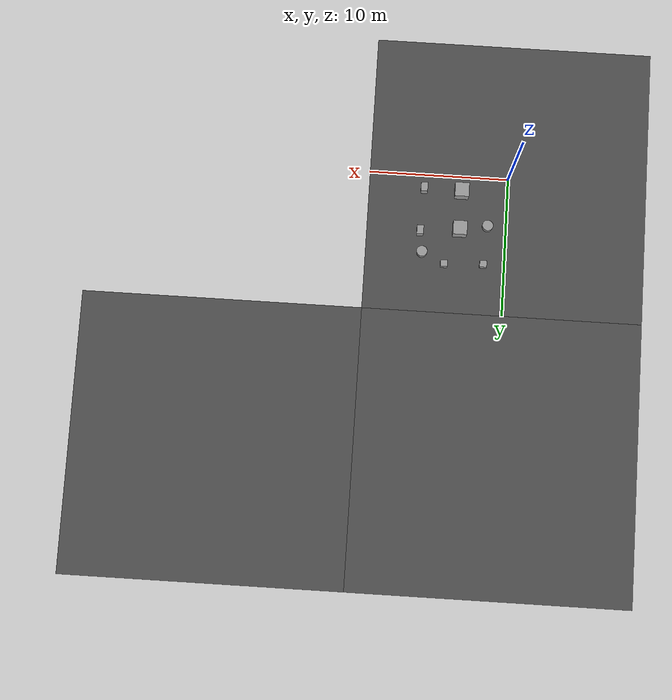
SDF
<sdf version="1.7">
 <world name="default">
  <model name="ground_plane">
   <static>1</static>
   <link name="link">
    <collision name="collision">
     <geometry><plane><normal>0 0 1</normal><size>100 100</size></plane></geometry>
     <surface>
      <contact><collide_bitmask>65535</collide_bitmask></contact>
      <friction><ode><mu>100</mu><mu2>50</mu2></ode></friction>
     </surface>
    </collision>
    <visual name="visual">
     <cast_shadows>0</cast_shadows>
     <geometry><plane><normal>0 0 1</normal><size>100 100</size></plane></geometry>
     <material>
      <script><uri>file://media/materials/scripts/gazebo.material</uri><name>Gazebo/Grey</name></script>
     </material>
    </visual>
   </link>
  </model>
  <model name="asphalt_plane">
   <static>1</static>
   <link name="link">
    <collision name="collision"><geometry><box><size>20 20 0.1</size></box></geometry></collision>
    <visual name="visual">
     <cast_shadows>0</cast_shadows>
     <geometry><box><size>20 20 0.1</size></box></geometry>
     <material>
      <script>
       <uri>model://asphalt_plane/materials/scripts</uri>
       <uri>model://asphalt_plane/materials/textures</uri>
       <name>vrc/asphalt</name>
      </script>
     </material>
    </visual>
   </link>
  </model>
  <model name="asphalt_plane_clone_5">
   <static>1</static>
   <link name="link">
    <collision name="collision"><geometry><box><size>20 20 0.1</size></box></geometry></collision>
    <visual name="visual">
     <cast_shadows>0</cast_shadows>
     <geometry><box><size>20 20 0.1</size></box></geometry>
     <material>
      <script>
       <uri>model://asphalt_plane/materials/scripts</uri>
       <uri>model://asphalt_plane/materials/textures</uri>
       <name>vrc/asphalt</name>
      </script>
     </material>
    </visual>
   </link>
   <pose>0 20 0 0 -0 0</pose>
  </model>
  <model name="asphalt_plane_clone_6">
   <static>1</static>
   <link name="link">
    <collision name="collision"><geometry><box><size>20 20 0.1</size></box></geometry></collision>
    <visual name="visual">
     <cast_shadows>0</cast_shadows>
     <geometry><box><size>20 20 0.1</size></box></geometry>
     <material>
      <script>
       <uri>model://asphalt_plane/materials/scripts</uri>
       <uri>model://asphalt_plane/materials/textures</uri>
       <name>vrc/asphalt</name>
      </script>
     </material>
    </visual>
   </link>
   <pose>20 20 0 0 -0 0</pose>
  </model>
  <model name="unit_box">
   <pose>3.3249 3.92531 0.549996 9e-06 1e-06 0</pose>
   <link name="link">
    <inertial>
     <mass>1</mass>
     <inertia>
      <ixx>0.166667</ixx>
      <ixy>0</ixy>
      <ixz>0</ixz>
      <iyy>0.166667</iyy>
      <iyz>0</iyz>
      <izz>0.166667</izz>
     </inertia>
    </inertial>
    <collision name="collision"><geometry><box><size>1 1 1</size></box></geometry></collision>
    <visual name="visual">
     <geometry><box><size>1 1 1</size></box></geometry>
     <material>
      <script><name>Gazebo/Grey</name><uri>file://media/materials/scripts/gazebo.material</uri></script>
     </material>
    </visual>
   </link>
  </model>
  <model name="unit_box_0">
   <pose>4.32444 6.49188 0.301356 0 -0 1e-06</pose>
   <link name="link">
    <inertial>
     <mass>1</mass>
     <inertia>
      <ixx>0.166667</ixx>
      <ixy>0</ixy>
      <ixz>0</ixz>
      <iyy>0.166667</iyy>
      <iyz>0</iyz>
      <izz>0.166667</izz>
     </inertia>
    </inertial>
    <collision name="collision">
     <geometry><box><size>0.495294 0.467832 0.502712</size></box></geometry>
    </collision>
    <visual name="visual">
     <geometry><box><size>0.495294 0.467832 0.502712</size></box></geometry>
     <material>
      <script><name>Gazebo/Grey</name><uri>file://media/materials/scripts/gazebo.material</uri></script>
     </material>
    </visual>
   </link>
  </model>
  <model name="unit_box_0_clone_1_clone_0">
   <pose>1.52127 6.36788 0.301356 0 -0 1e-06</pose>
   <link name="link">
    <inertial>
     <mass>1</mass>
     <inertia>
      <ixx>0.166667</ixx>
      <ixy>0</ixy>
      <ixz>0</ixz>
      <iyy>0.166667</iyy>
      <iyz>0</iyz>
      <izz>0.166667</izz>
     </inertia>
    </inertial>
    <collision name="collision">
     <geometry><box><size>0.495294 0.467832 0.502712</size></box></geometry>
    </collision>
    <visual name="visual">
     <geometry><box><size>0.495294 0.467832 0.502712</size></box></geometry>
     <material>
      <script><name>Gazebo/Grey</name><uri>file://media/materials/scripts/gazebo.material</uri></script>
     </material>
    </visual>
   </link>
  </model>
  <model name="unit_box_3_clone_1">
   <pose>6.15547 4.18849 0.422713 -0 -0 -0</pose>
   <link name="link">
    <inertial>
     <mass>1</mass>
     <inertia>
      <ixx>0.166667</ixx>
      <ixy>0</ixy>
      <ixz>0</ixz>
      <iyy>0.166667</iyy>
      <iyz>0</iyz>
      <izz>0.166667</izz>
     </inertia>
    </inertial>
    <collision name="collision">
     <geometry><box><size>0.473217 0.637104 0.745427</size></box></geometry>
    </collision>
    <visual name="visual">
     <geometry><box><size>0.473217 0.637104 0.745427</size></box></geometry>
     <material>
      <script><name>Gazebo/Grey</name><uri>file://media/materials/scripts/gazebo.material</uri></script>
     </material>
    </visual>
   </link>
  </model>
  <model name="unit_box_3_clone_5">
   <pose>6.02964 1.04247 0.43567 -0 -0 -0</pose>
   <link name="link">
    <inertial>
     <mass>1</mass>
     <inertia>
      <ixx>0.166667</ixx>
      <ixy>0</ixy>
      <ixz>0</ixz>
      <iyy>0.166667</iyy>
      <iyz>0</iyz>
      <izz>0.166667</izz>
     </inertia>
    </inertial>
    <collision name="collision"><geometry><box><size>0.473217 0.637104 0.77134</size></box></geometry></collision>
    <visual name="visual">
     <geometry><box><size>0.473217 0.637104 0.77134</size></box></geometry>
     <material>
      <script><name>Gazebo/Grey</name><uri>file://media/materials/scripts/gazebo.material</uri></script>
     </material>
    </visual>
   </link>
  </model>
  <model name="unit_cylinder_clone_4_clone_2">
   <pose>5.94369 5.7065 0.294825 0 -0 0.000218</pose>
   <link name="link">
    <inertial>
     <mass>1</mass>
     <inertia><ixx>0.145833</ixx><ixy>0</ixy><ixz>0</ixz><iyy>0.145833</iyy><iyz>0</iyz><izz>0.125</izz></inertia>
    </inertial>
    <collision name="collision">
     <geometry><cylinder><radius>0.384097</radius><length>0.48967</length></cylinder></geometry>
    </collision>
    <visual name="visual">
     <geometry><cylinder><radius>0.384097</radius><length>0.48967</length></cylinder></geometry>
     <material>
      <script><name>Gazebo/Grey</name><uri>file://media/materials/scripts/gazebo.material</uri></script>
     </material>
    </visual>
   </link>
  </model>
  <model name="unit_box_2_clone_0_clone">
   <pose>3.32801 1.12482 0.55 0 -0 0</pose>
   <link name="link">
    <inertial>
     <mass>1</mass>
     <inertia>
      <ixx>0.166667</ixx>
      <ixy>0</ixy>
      <ixz>0</ixz>
      <iyy>0.166667</iyy>
      <iyz>0</iyz>
      <izz>0.166667</izz>
     </inertia>
    </inertial>
    <collision name="collision"><geometry><box><size>1 1 1</size></box></geometry></collision>
    <visual name="visual">
     <geometry><box><size>1 1 1</size></box></geometry>
     <material>
      <script><name>Gazebo/Grey</name><uri>file://media/materials/scripts/gazebo.material</uri></script>
     </material>
    </visual>
   </link>
  </model>
  <model name="unit_cylinder_clone_4_clone_clone">
   <pose>1.33074 3.54544 0.294824 2e-06 -5e-06 0.000173</pose>
   <link name="link">
    <inertial>
     <mass>1</mass>
     <inertia><ixx>0.145833</ixx><ixy>0</ixy><ixz>0</ixz><iyy>0.145833</iyy><iyz>0</iyz><izz>0.125</izz></inertia>
    </inertial>
    <collision name="collision">
     <geometry><cylinder><radius>0.384097</radius><length>0.48967</length></cylinder></geometry>
    </collision>
    <visual name="visual">
     <geometry><cylinder><radius>0.384097</radius><length>0.48967</length></cylinder></geometry>
     <material>
      <script><name>Gazebo/Grey</name><uri>file://media/materials/scripts/gazebo.material</uri></script>
     </material>
    </visual>
   </link>
  </model>
 </world>
</sdf>
